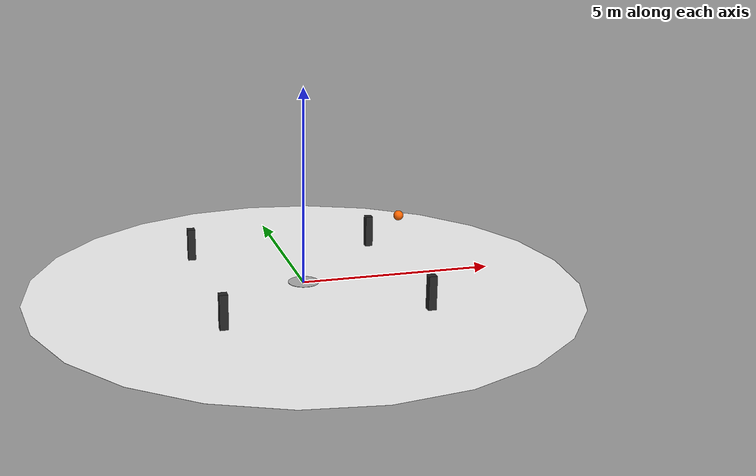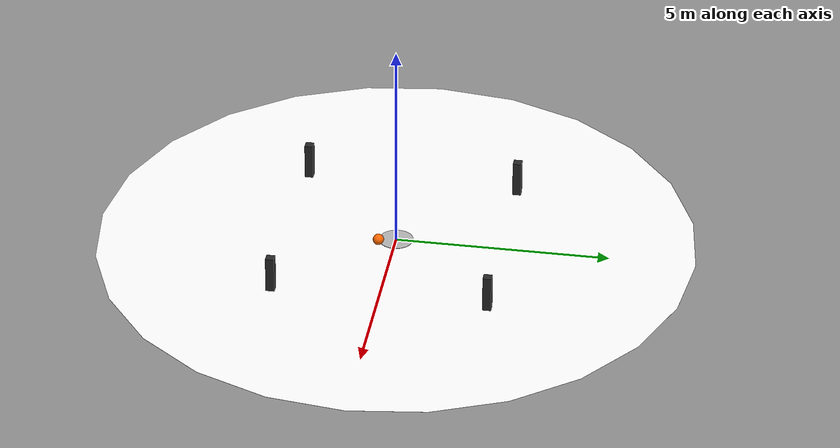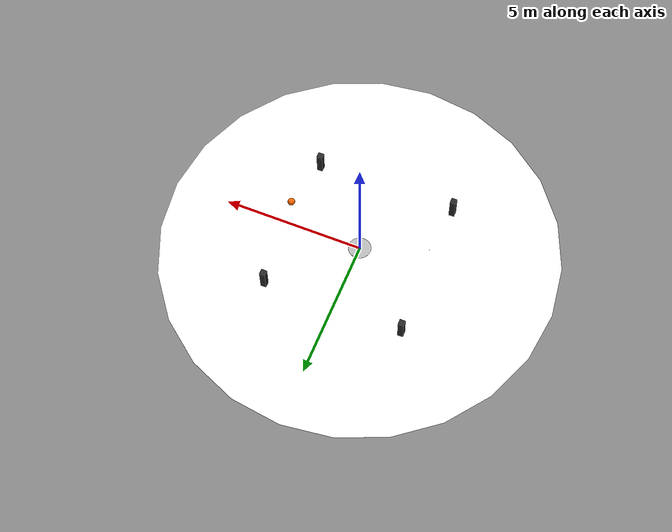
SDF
<sdf version="1.10">
 <world name="eletroquad26_m2">
  <physics type="ode">
   <max_step_size>0.001</max_step_size>
   <real_time_factor>1</real_time_factor>
   <real_time_update_rate>1000</real_time_update_rate>
  </physics>
  <gravity>0 0 -9.8000000000000007</gravity>
  <magnetic_field>5.5644999999999998e-06 2.2875799999999999e-05 -4.2388400000000002e-05</magnetic_field>
  <atmosphere type="adiabatic"/>
  <scene>
   <ambient>0.400000006 0.400000006 0.400000006 1</ambient>
   <background>0.699999988 0.699999988 0.699999988 1</background>
   <shadows>true</shadows>
  </scene>
  <model name="styro_ball">
   <include><uri>models/hang_the_right_wire/styro_ball</uri></include>
   <pose degrees="true">2.5 0 1.6 0 0 0</pose>
   <static>true</static>
  </model>
  <model name="pole1">
   <include><uri>models/hang_the_right_wire/pole</uri></include>
   <pose degrees="true">2.5 2.5 0 0 0 0</pose>
   <static>true</static>
  </model>
  <model name="pole2">
   <include><uri>models/hang_the_right_wire/pole</uri></include>
   <pose degrees="true">2.5 -2.5 0 0 0 0</pose>
   <static>true</static>
  </model>
  <model name="hose1">
   <include><uri>models/hang_the_right_wire/hose</uri></include>
   <pose degrees="true">2.5 0 1.6 0 0 0</pose>
   <static>true</static>
  </model>
  <model name="pole3">
   <include><uri>models/hang_the_right_wire/pole</uri></include>
   <pose degrees="true">-2.5 2.5 0 0 0 0</pose>
   <static>true</static>
  </model>
  <model name="pole4">
   <include><uri>models/hang_the_right_wire/pole</uri></include>
   <pose degrees="true">-2.5 -2.5 0 0 0 0</pose>
   <static>true</static>
  </model>
  <model name="hose2">
   <include><uri>models/hang_the_right_wire/hose</uri></include>
   <pose degrees="true">-2.5 0 1.6 0 0 0</pose>
   <static>true</static>
  </model>
  <include>
   <uri>models/miscs/takeoff_platform</uri>
   <static>true</static>
   <pose degrees="true">0 0 0.01 0 0 0</pose>
  </include>
  <include>
   <uri>models/miscs/arenas/circle</uri>
   <static>true</static>
   <pose degrees="true">0 0 0 0 0 -90</pose>
  </include>
  <light name="sun" type="directional">
   <pose>0 0 10 0 0 0</pose>
   <intensity>1</intensity>
   <direction>-0.5 0.10000000000000001 -0.90000000000000002</direction>
   <diffuse>0.800000012 0.800000012 0.800000012 1</diffuse>
   <specular>0.200000003 0.200000003 0.200000003 1</specular>
   <attenuation>
    <range>1000</range>
    <linear>0.01</linear>
    <constant>0.90000000000000002</constant>
    <quadratic>0.001</quadratic>
   </attenuation>
   <spot><inner_angle>0</inner_angle><outer_angle>0</outer_angle><falloff>0</falloff></spot>
  </light>
  <spherical_coordinates>
   <surface_model>EARTH_WGS84</surface_model>
   <world_frame_orientation>ENU</world_frame_orientation>
   <latitude_deg>47.397971057728974</latitude_deg>
   <longitude_deg>8.546163739800146</longitude_deg>
   <elevation>0</elevation>
  </spherical_coordinates>
 </world>
</sdf>

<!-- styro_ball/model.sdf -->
<sdf version='1.10'>
<model name='styro_ball'>
  <link name='styro_link'>
    <enable_wind>false</enable_wind>
    <collision name='styro_collision'>
      <geometry><sphere><radius>0.125</radius></sphere></geometry>
      <surface>
        <friction><ode/></friction>
        <bounce/>
        <contact/>
      </surface>
    </collision>
    <visual name='styro_visual'>
      <geometry><sphere><radius>0.125</radius></sphere></geometry>
      <!-- EDITAL -->
      <material><ambient>1 0.3984375 0</ambient><diffuse>1 0.3984375 0</diffuse><specular>1 0.3984375 0</specular></material>
      <!-- EDITAL -->

    </visual>
  </link>
  <self_collide>false</self_collide>
</model>
</sdf>

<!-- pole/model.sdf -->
<sdf version='1.10'>
<model name='pole'>
  <link name='pole_link'>
    <enable_wind>false</enable_wind>
    <collision name='pole_collision'>
      <geometry><box><size>0.2 0.2 1.7</size></box></geometry>
      <surface>
        <friction><ode/></friction>
        <bounce/>
        <contact/>
      </surface>
    </collision>
    <visual name='pole_visual'>
      <geometry><box><size>0.2 0.2 1.7</size></box></geometry>
      <material>
        <diffuse>0.15 0.15 0.15 1</diffuse>
        <specular>1 1 1 1</specular>
      </material>
    </visual>
  </link>
  <self_collide>false</self_collide>
</model>
</sdf>

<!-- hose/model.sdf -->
<sdf version='1.10'>
<model name='hose'>
  <link name='hose_link'>
    <enable_wind>false</enable_wind>
    <collision name='hose_collision'>
      <geometry><cylinder>
        <radius>0.00635</radius>
        <length>0</length>
      </cylinder></geometry>
      <surface>
        <friction><ode/></friction>
        <bounce/>
        <contact/>
      </surface>
    </collision>
    <visual name='hose_visual'>
      <geometry><cylinder>
        <radius>0.00635</radius>
        <length>0</length>
      </cylinder></geometry>
      <!-- EDITAL -->
      <material><ambient>1 0.3984375 0</ambient><diffuse>1 0.3984375 0</diffuse><specular>1 0.3984375 0</specular></material>
      <!-- EDITAL -->

    </visual>
  </link>
  <self_collide>false</self_collide>
  <static>true</static>

</model>
</sdf>

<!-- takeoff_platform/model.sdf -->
<sdf version='1.10'>
<model name='takeoff_platform'>
  <link name='takeoff_link'>
    <enable_wind>false</enable_wind>
    <include><uri>models/miscs/default_platform</uri></include>
    <visual name='takeoff_image'>
      <pose>0 0 0.006 0 0 0</pose>
      <geometry><cylinder>
        <radius>0.4</radius>
        <length>0.01</length>
      </cylinder></geometry>
        <material>
        <diffuse>0.7 0.7 0.7 1</diffuse>
        <specular>1 1 1 1</specular>
        <pbr>
          <metal>
            <albedo_map>materials/textures/takeoff.png</albedo_map>
            <metalness>0</metalness>
            <roughness>1</roughness>
          </metal>
        </pbr>
        </material>
    </visual>
  </link>
  <self_collide>false</self_collide>
</model>
</sdf>

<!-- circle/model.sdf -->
<sdf version='1.10'>
<model name='arena'>
  <link name='arena_link'>
    <enable_wind>false</enable_wind>
    <collision name='arena_collision'>
      <geometry><cylinder>
        <radius>7</radius>
        <length>0.001</length>
      </cylinder></geometry>
      <surface>
        <friction><ode/></friction>
        <bounce/>
        <contact/>
      </surface>
    </collision>
    <visual name='arena_visual'>
      <geometry><cylinder>
        <radius>7</radius>
        <length>0.001</length>
      </cylinder></geometry>
      <material>
        <ambient>0.4 0.4 0.4 1</ambient>
        <diffuse>1 1 1 1</diffuse>
        <specular>1 1 1 1</specular>
      </material>
    </visual>
  </link>
  <self_collide>false</self_collide>
</model>
</sdf>
